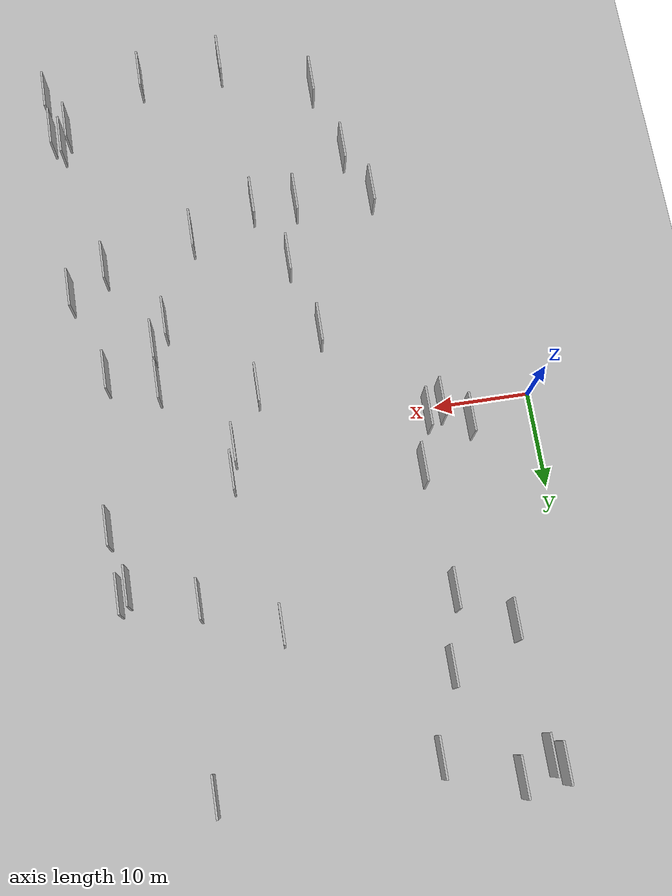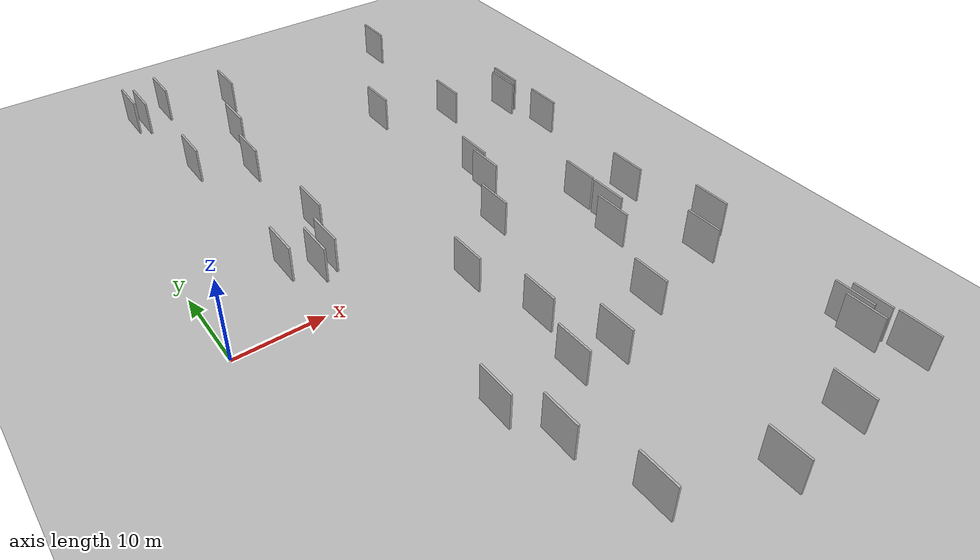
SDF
<?xml version="1.0" encoding="utf-8"?>

<sdf version="1.6">

   <world name="default">

      <gui fullscreen="0">

         <camera name="user_camera">

            <pose>-15 0 4.57585 0 0 0</pose>

            <view_controller>orbit</view_controller>

         </camera>

      </gui>

      <scene>

         <sky>

           <clouds>

             <speed>12</speed>

           </clouds>

         </sky>

         <ambient>0.4 0.4 0.4 1</ambient>

         <background>0.7 0.7 0.7 1</background>

         <shadows>1</shadows>

      </scene>

      <gravity>0 0 -9.8066</gravity>

      <magnetic_field>6e-06 2.3e-05 -4.2e-05</magnetic_field>

      <physics default="0" name="default_physics" type="ode">

         <ode>

            <solver>

               <type>quick</type>

               <iters>10</iters>

               <sor>1.0</sor>

               <use_dynamic_moi_rescaling>0</use_dynamic_moi_rescaling>

            </solver>

            <constraints>

               <cfm>0</cfm>

               <erp>0.2</erp>

               <contact_max_correcting_vel>100</contact_max_correcting_vel>

               <contact_surface_layer>0.001</contact_surface_layer>

            </constraints>

         </ode>

         <max_step_size>0.004</max_step_size>

         <real_time_factor>1</real_time_factor>

         <real_time_update_rate>250</real_time_update_rate>

      </physics>

      <light name="sun" type="directional">

         <cast_shadows>1</cast_shadows>

         <pose>0 0 10 0 0 0</pose>

         <diffuse>0.8 0.8 0.8 1</diffuse>

         <specular>0.2 0.2 0.2 1</specular>

         <attenuation>

            <range>1000</range>

            <constant>0.9</constant>

            <linear>0.01</linear>

            <quadratic>0.001</quadratic>

         </attenuation>

         <direction>-0.5 0.1 -0.9</direction>

      </light>

      <include>

         <name>ground_plane_1</name>

         <uri>model://HANNAS_ground_plane</uri>

         <pose>0 0 0  0 0 0</pose>

      </include>

      <include>

         <name>ground_plane_2</name>

         <uri>model://HANNAS_ground_plane</uri>

         <pose>100 0 0  0 0 0</pose>

      </include>

      <model name="HANNAS_wall_1">

         <static>1</static>

         <pose frame="">29.1804 20.7150 5.0 0.000000 0.000000 1.570796</pose>

         <link name="link">

            <pose frame="">0 0 2.00 0 0 0</pose>

            <collision name="collision">

               <geometry>

                  <box>

                     <size>4.00 0.2 4.00</size>

                  </box>

               </geometry>

               <max_contacts>10</max_contacts>

               <surface>

                  <contact>

                     <ode/>

                  </contact>

                  <bounce/>

                  <friction>

                     <torsional>

                        <ode/>

                     </torsional>

                     <ode/>

                  </friction>

               </surface>

            </collision>

            <visual name="visual">

               <cast_shadows>0</cast_shadows>

               <geometry>

                  <box>

                     <size>4.00 0.2 4.00</size>

                  </box>

               </geometry>

               <material>

                  <script>

                     <uri>model://HANNAS_wall/materials/scripts</uri>

                     <uri>model://HANNAS_wall/materials/textures</uri>

                     <name>vrc/HANNAS_wall</name>

                  </script>

               </material>

            </visual>

            <self_collide>0</self_collide>

            <enable_wind>0</enable_wind>

            <kinematic>0</kinematic>

         </link>

      </model>

      <model name="HANNAS_wall_2">

         <static>1</static>

         <pose frame="">44.1626 -34.4590 5.0 0.000000 0.000000 1.570796</pose>

         <link name="link">

            <pose frame="">0 0 2.00 0 0 0</pose>

            <collision name="collision">

               <geometry>

                  <box>

                     <size>4.00 0.2 4.00</size>

                  </box>

               </geometry>

               <max_contacts>10</max_contacts>

               <surface>

                  <contact>

                     <ode/>

                  </contact>

                  <bounce/>

                  <friction>

                     <torsional>

                        <ode/>

                     </torsional>

                     <ode/>

                  </friction>

               </surface>

            </collision>

            <visual name="visual">

               <cast_shadows>0</cast_shadows>

               <geometry>

                  <box>

                     <size>4.00 0.2 4.00</size>

                  </box>

               </geometry>

               <material>

                  <script>

                     <uri>model://HANNAS_wall/materials/scripts</uri>

                     <uri>model://HANNAS_wall/materials/textures</uri>

                     <name>vrc/HANNAS_wall</name>

                  </script>

               </material>

            </visual>

            <self_collide>0</self_collide>

            <enable_wind>0</enable_wind>

            <kinematic>0</kinematic>

         </link>

      </model>

      <model name="HANNAS_wall_3">

         <static>1</static>

         <pose frame="">12.3470 19.8052 5.0 0.000000 0.000000 1.570796</pose>

         <link name="link">

            <pose frame="">0 0 2.00 0 0 0</pose>

            <collision name="collision">

               <geometry>

                  <box>

                     <size>4.00 0.2 4.00</size>

                  </box>

               </geometry>

               <max_contacts>10</max_contacts>

               <surface>

                  <contact>

                     <ode/>

                  </contact>

                  <bounce/>

                  <friction>

                     <torsional>

                        <ode/>

                     </torsional>

                     <ode/>

                  </friction>

               </surface>

            </collision>

            <visual name="visual">

               <cast_shadows>0</cast_shadows>

               <geometry>

                  <box>

                     <size>4.00 0.2 4.00</size>

                  </box>

               </geometry>

               <material>

                  <script>

                     <uri>model://HANNAS_wall/materials/scripts</uri>

                     <uri>model://HANNAS_wall/materials/textures</uri>

                     <name>vrc/HANNAS_wall</name>

                  </script>

               </material>

            </visual>

            <self_collide>0</self_collide>

            <enable_wind>0</enable_wind>

            <kinematic>0</kinematic>

         </link>

      </model>

      <model name="HANNAS_wall_4">

         <static>1</static>

         <pose frame="">31.8530 5.3549 5.0 0.000000 0.000000 1.570796</pose>

         <link name="link">

            <pose frame="">0 0 2.00 0 0 0</pose>

            <collision name="collision">

               <geometry>

                  <box>

                     <size>4.00 0.2 4.00</size>

                  </box>

               </geometry>

               <max_contacts>10</max_contacts>

               <surface>

                  <contact>

                     <ode/>

                  </contact>

                  <bounce/>

                  <friction>

                     <torsional>

                        <ode/>

                     </torsional>

                     <ode/>

                  </friction>

               </surface>

            </collision>

            <visual name="visual">

               <cast_shadows>0</cast_shadows>

               <geometry>

                  <box>

                     <size>4.00 0.2 4.00</size>

                  </box>

               </geometry>

               <material>

                  <script>

                     <uri>model://HANNAS_wall/materials/scripts</uri>

                     <uri>model://HANNAS_wall/materials/textures</uri>

                     <name>vrc/HANNAS_wall</name>

                  </script>

               </material>

            </visual>

            <self_collide>0</self_collide>

            <enable_wind>0</enable_wind>

            <kinematic>0</kinematic>

         </link>

      </model>

      <model name="HANNAS_wall_5">

         <static>1</static>

         <pose frame="">9.3715 37.5616 5.0 0.000000 0.000000 1.570796</pose>

         <link name="link">

            <pose frame="">0 0 2.00 0 0 0</pose>

            <collision name="collision">

               <geometry>

                  <box>

                     <size>4.00 0.2 4.00</size>

                  </box>

               </geometry>

               <max_contacts>10</max_contacts>

               <surface>

                  <contact>

                     <ode/>

                  </contact>

                  <bounce/>

                  <friction>

                     <torsional>

                        <ode/>

                     </torsional>

                     <ode/>

                  </friction>

               </surface>

            </collision>

            <visual name="visual">

               <cast_shadows>0</cast_shadows>

               <geometry>

                  <box>

                     <size>4.00 0.2 4.00</size>

                  </box>

               </geometry>

               <material>

                  <script>

                     <uri>model://HANNAS_wall/materials/scripts</uri>

                     <uri>model://HANNAS_wall/materials/textures</uri>

                     <name>vrc/HANNAS_wall</name>

                  </script>

               </material>

            </visual>

            <self_collide>0</self_collide>

            <enable_wind>0</enable_wind>

            <kinematic>0</kinematic>

         </link>

      </model>

      <model name="HANNAS_wall_6">

         <static>1</static>

         <pose frame="">45.6679 -15.7264 5.0 0.000000 0.000000 1.570796</pose>

         <link name="link">

            <pose frame="">0 0 2.00 0 0 0</pose>

            <collision name="collision">

               <geometry>

                  <box>

                     <size>4.00 0.2 4.00</size>

                  </box>

               </geometry>

               <max_contacts>10</max_contacts>

               <surface>

                  <contact>

                     <ode/>

                  </contact>

                  <bounce/>

                  <friction>

                     <torsional>

                        <ode/>

                     </torsional>

                     <ode/>

                  </friction>

               </surface>

            </collision>

            <visual name="visual">

               <cast_shadows>0</cast_shadows>

               <geometry>

                  <box>

                     <size>4.00 0.2 4.00</size>

                  </box>

               </geometry>

               <material>

                  <script>

                     <uri>model://HANNAS_wall/materials/scripts</uri>

                     <uri>model://HANNAS_wall/materials/textures</uri>

                     <name>vrc/HANNAS_wall</name>

                  </script>

               </material>

            </visual>

            <self_collide>0</self_collide>

            <enable_wind>0</enable_wind>

            <kinematic>0</kinematic>

         </link>

      </model>

      <model name="HANNAS_wall_7">

         <static>1</static>

         <pose frame="">5.3124 36.9053 5.0 0.000000 0.000000 1.570796</pose>

         <link name="link">

            <pose frame="">0 0 2.00 0 0 0</pose>

            <collision name="collision">

               <geometry>

                  <box>

                     <size>4.00 0.2 4.00</size>

                  </box>

               </geometry>

               <max_contacts>10</max_contacts>

               <surface>

                  <contact>

                     <ode/>

                  </contact>

                  <bounce/>

                  <friction>

                     <torsional>

                        <ode/>

                     </torsional>

                     <ode/>

                  </friction>

               </surface>

            </collision>

            <visual name="visual">

               <cast_shadows>0</cast_shadows>

               <geometry>

                  <box>

                     <size>4.00 0.2 4.00</size>

                  </box>

               </geometry>

               <material>

                  <script>

                     <uri>model://HANNAS_wall/materials/scripts</uri>

                     <uri>model://HANNAS_wall/materials/textures</uri>

                     <name>vrc/HANNAS_wall</name>

                  </script>

               </material>

            </visual>

            <self_collide>0</self_collide>

            <enable_wind>0</enable_wind>

            <kinematic>0</kinematic>

         </link>

      </model>

      <model name="HANNAS_wall_8">

         <static>1</static>

         <pose frame="">21.4274 -22.7478 5.0 0.000000 0.000000 1.570796</pose>

         <link name="link">

            <pose frame="">0 0 2.00 0 0 0</pose>

            <collision name="collision">

               <geometry>

                  <box>

                     <size>4.00 0.2 4.00</size>

                  </box>

               </geometry>

               <max_contacts>10</max_contacts>

               <surface>

                  <contact>

                     <ode/>

                  </contact>

                  <bounce/>

                  <friction>

                     <torsional>

                        <ode/>

                     </torsional>

                     <ode/>

                  </friction>

               </surface>

            </collision>

            <visual name="visual">

               <cast_shadows>0</cast_shadows>

               <geometry>

                  <box>

                     <size>4.00 0.2 4.00</size>

                  </box>

               </geometry>

               <material>

                  <script>

                     <uri>model://HANNAS_wall/materials/scripts</uri>

                     <uri>model://HANNAS_wall/materials/textures</uri>

                     <name>vrc/HANNAS_wall</name>

                  </script>

               </material>

            </visual>

            <self_collide>0</self_collide>

            <enable_wind>0</enable_wind>

            <kinematic>0</kinematic>

         </link>

      </model>

      <model name="HANNAS_wall_9">

         <static>1</static>

         <pose frame="">16.4098 34.7605 5.0 0.000000 0.000000 1.570796</pose>

         <link name="link">

            <pose frame="">0 0 2.00 0 0 0</pose>

            <collision name="collision">

               <geometry>

                  <box>

                     <size>4.00 0.2 4.00</size>

                  </box>

               </geometry>

               <max_contacts>10</max_contacts>

               <surface>

                  <contact>

                     <ode/>

                  </contact>

                  <bounce/>

                  <friction>

                     <torsional>

                        <ode/>

                     </torsional>

                     <ode/>

                  </friction>

               </surface>

            </collision>

            <visual name="visual">

               <cast_shadows>0</cast_shadows>

               <geometry>

                  <box>

                     <size>4.00 0.2 4.00</size>

                  </box>

               </geometry>

               <material>

                  <script>

                     <uri>model://HANNAS_wall/materials/scripts</uri>

                     <uri>model://HANNAS_wall/materials/textures</uri>

                     <name>vrc/HANNAS_wall</name>

                  </script>

               </material>

            </visual>

            <self_collide>0</self_collide>

            <enable_wind>0</enable_wind>

            <kinematic>0</kinematic>

         </link>

      </model>

      <model name="HANNAS_wall_10">

         <static>1</static>

         <pose frame="">44.8331 -32.8432 5.0 0.000000 0.000000 1.570796</pose>

         <link name="link">

            <pose frame="">0 0 2.00 0 0 0</pose>

            <collision name="collision">

               <geometry>

                  <box>

                     <size>4.00 0.2 4.00</size>

                  </box>

               </geometry>

               <max_contacts>10</max_contacts>

               <surface>

                  <contact>

                     <ode/>

                  </contact>

                  <bounce/>

                  <friction>

                     <torsional>

                        <ode/>

                     </torsional>

                     <ode/>

                  </friction>

               </surface>

            </collision>

            <visual name="visual">

               <cast_shadows>0</cast_shadows>

               <geometry>

                  <box>

                     <size>4.00 0.2 4.00</size>

                  </box>

               </geometry>

               <material>

                  <script>

                     <uri>model://HANNAS_wall/materials/scripts</uri>

                     <uri>model://HANNAS_wall/materials/textures</uri>

                     <name>vrc/HANNAS_wall</name>

                  </script>

               </material>

            </visual>

            <self_collide>0</self_collide>

            <enable_wind>0</enable_wind>

            <kinematic>0</kinematic>

         </link>

      </model>

      <model name="HANNAS_wall_11">

         <static>1</static>

         <pose frame="">44.5225 8.9999 5.0 0.000000 0.000000 1.570796</pose>

         <link name="link">

            <pose frame="">0 0 2.00 0 0 0</pose>

            <collision name="collision">

               <geometry>

                  <box>

                     <size>4.00 0.2 4.00</size>

                  </box>

               </geometry>

               <max_contacts>10</max_contacts>

               <surface>

                  <contact>

                     <ode/>

                  </contact>

                  <bounce/>

                  <friction>

                     <torsional>

                        <ode/>

                     </torsional>

                     <ode/>

                  </friction>

               </surface>

            </collision>

            <visual name="visual">

               <cast_shadows>0</cast_shadows>

               <geometry>

                  <box>

                     <size>4.00 0.2 4.00</size>

                  </box>

               </geometry>

               <material>

                  <script>

                     <uri>model://HANNAS_wall/materials/scripts</uri>

                     <uri>model://HANNAS_wall/materials/textures</uri>

                     <name>vrc/HANNAS_wall</name>

                  </script>

               </material>

            </visual>

            <self_collide>0</self_collide>

            <enable_wind>0</enable_wind>

            <kinematic>0</kinematic>

         </link>

      </model>

      <model name="HANNAS_wall_12">

         <static>1</static>

         <pose frame="">37.4543 35.0978 5.0 0.000000 0.000000 1.570796</pose>

         <link name="link">

            <pose frame="">0 0 2.00 0 0 0</pose>

            <collision name="collision">

               <geometry>

                  <box>

                     <size>4.00 0.2 4.00</size>

                  </box>

               </geometry>

               <max_contacts>10</max_contacts>

               <surface>

                  <contact>

                     <ode/>

                  </contact>

                  <bounce/>

                  <friction>

                     <torsional>

                        <ode/>

                     </torsional>

                     <ode/>

                  </friction>

               </surface>

            </collision>

            <visual name="visual">

               <cast_shadows>0</cast_shadows>

               <geometry>

                  <box>

                     <size>4.00 0.2 4.00</size>

                  </box>

               </geometry>

               <material>

                  <script>

                     <uri>model://HANNAS_wall/materials/scripts</uri>

                     <uri>model://HANNAS_wall/materials/textures</uri>

                     <name>vrc/HANNAS_wall</name>

                  </script>

               </material>

            </visual>

            <self_collide>0</self_collide>

            <enable_wind>0</enable_wind>

            <kinematic>0</kinematic>

         </link>

      </model>

      <model name="HANNAS_wall_13">

         <static>1</static>

         <pose frame="">6.3578 36.0216 5.0 0.000000 0.000000 1.570796</pose>

         <link name="link">

            <pose frame="">0 0 2.00 0 0 0</pose>

            <collision name="collision">

               <geometry>

                  <box>

                     <size>4.00 0.2 4.00</size>

                  </box>

               </geometry>

               <max_contacts>10</max_contacts>

               <surface>

                  <contact>

                     <ode/>

                  </contact>

                  <bounce/>

                  <friction>

                     <torsional>

                        <ode/>

                     </torsional>

                     <ode/>

                  </friction>

               </surface>

            </collision>

            <visual name="visual">

               <cast_shadows>0</cast_shadows>

               <geometry>

                  <box>

                     <size>4.00 0.2 4.00</size>

                  </box>

               </geometry>

               <material>

                  <script>

                     <uri>model://HANNAS_wall/materials/scripts</uri>

                     <uri>model://HANNAS_wall/materials/textures</uri>

                     <name>vrc/HANNAS_wall</name>

                  </script>

               </material>

            </visual>

            <self_collide>0</self_collide>

            <enable_wind>0</enable_wind>

            <kinematic>0</kinematic>

         </link>

      </model>

      <model name="HANNAS_wall_14">

         <static>1</static>

         <pose frame="">13.4109 -22.6222 5.0 0.000000 0.000000 1.570796</pose>

         <link name="link">

            <pose frame="">0 0 2.00 0 0 0</pose>

            <collision name="collision">

               <geometry>

                  <box>

                     <size>4.00 0.2 4.00</size>

                  </box>

               </geometry>

               <max_contacts>10</max_contacts>

               <surface>

                  <contact>

                     <ode/>

                  </contact>

                  <bounce/>

                  <friction>

                     <torsional>

                        <ode/>

                     </torsional>

                     <ode/>

                  </friction>

               </surface>

            </collision>

            <visual name="visual">

               <cast_shadows>0</cast_shadows>

               <geometry>

                  <box>

                     <size>4.00 0.2 4.00</size>

                  </box>

               </geometry>

               <material>

                  <script>

                     <uri>model://HANNAS_wall/materials/scripts</uri>

                     <uri>model://HANNAS_wall/materials/textures</uri>

                     <name>vrc/HANNAS_wall</name>

                  </script>

               </material>

            </visual>

            <self_collide>0</self_collide>

            <enable_wind>0</enable_wind>

            <kinematic>0</kinematic>

         </link>

      </model>

      <model name="HANNAS_wall_15">

         <static>1</static>

         <pose frame="">7.7082 3.1260 5.0 0.000000 0.000000 1.570796</pose>

         <link name="link">

            <pose frame="">0 0 2.00 0 0 0</pose>

            <collision name="collision">

               <geometry>

                  <box>

                     <size>4.00 0.2 4.00</size>

                  </box>

               </geometry>

               <max_contacts>10</max_contacts>

               <surface>

                  <contact>

                     <ode/>

                  </contact>

                  <bounce/>

                  <friction>

                     <torsional>

                        <ode/>

                     </torsional>

                     <ode/>

                  </friction>

               </surface>

            </collision>

            <visual name="visual">

               <cast_shadows>0</cast_shadows>

               <geometry>

                  <box>

                     <size>4.00 0.2 4.00</size>

                  </box>

               </geometry>

               <material>

                  <script>

                     <uri>model://HANNAS_wall/materials/scripts</uri>

                     <uri>model://HANNAS_wall/materials/textures</uri>

                     <name>vrc/HANNAS_wall</name>

                  </script>

               </material>

            </visual>

            <self_collide>0</self_collide>

            <enable_wind>0</enable_wind>

            <kinematic>0</kinematic>

         </link>

      </model>

      <model name="HANNAS_wall_16">

         <static>1</static>

         <pose frame="">13.9004 26.8375 5.0 0.000000 0.000000 1.570796</pose>

         <link name="link">

            <pose frame="">0 0 2.00 0 0 0</pose>

            <collision name="collision">

               <geometry>

                  <box>

                     <size>4.00 0.2 4.00</size>

                  </box>

               </geometry>

               <max_contacts>10</max_contacts>

               <surface>

                  <contact>

                     <ode/>

                  </contact>

                  <bounce/>

                  <friction>

                     <torsional>

                        <ode/>

                     </torsional>

                     <ode/>

                  </friction>

               </surface>

            </collision>

            <visual name="visual">

               <cast_shadows>0</cast_shadows>

               <geometry>

                  <box>

                     <size>4.00 0.2 4.00</size>

                  </box>

               </geometry>

               <material>

                  <script>

                     <uri>model://HANNAS_wall/materials/scripts</uri>

                     <uri>model://HANNAS_wall/materials/textures</uri>

                     <name>vrc/HANNAS_wall</name>

                  </script>

               </material>

            </visual>

            <self_collide>0</self_collide>

            <enable_wind>0</enable_wind>

            <kinematic>0</kinematic>

         </link>

      </model>

      <model name="HANNAS_wall_17">

         <static>1</static>

         <pose frame="">7.2357 23.4575 5.0 0.000000 0.000000 1.570796</pose>

         <link name="link">

            <pose frame="">0 0 2.00 0 0 0</pose>

            <collision name="collision">

               <geometry>

                  <box>

                     <size>4.00 0.2 4.00</size>

                  </box>

               </geometry>

               <max_contacts>10</max_contacts>

               <surface>

                  <contact>

                     <ode/>

                  </contact>

                  <bounce/>

                  <friction>

                     <torsional>

                        <ode/>

                     </torsional>

                     <ode/>

                  </friction>

               </surface>

            </collision>

            <visual name="visual">

               <cast_shadows>0</cast_shadows>

               <geometry>

                  <box>

                     <size>4.00 0.2 4.00</size>

                  </box>

               </geometry>

               <material>

                  <script>

                     <uri>model://HANNAS_wall/materials/scripts</uri>

                     <uri>model://HANNAS_wall/materials/textures</uri>

                     <name>vrc/HANNAS_wall</name>

                  </script>

               </material>

            </visual>

            <self_collide>0</self_collide>

            <enable_wind>0</enable_wind>

            <kinematic>0</kinematic>

         </link>

      </model>

      <model name="HANNAS_wall_18">

         <static>1</static>

         <pose frame="">27.1371 -39.9501 5.0 0.000000 0.000000 1.570796</pose>

         <link name="link">

            <pose frame="">0 0 2.00 0 0 0</pose>

            <collision name="collision">

               <geometry>

                  <box>

                     <size>4.00 0.2 4.00</size>

                  </box>

               </geometry>

               <max_contacts>10</max_contacts>

               <surface>

                  <contact>

                     <ode/>

                  </contact>

                  <bounce/>

                  <friction>

                     <torsional>

                        <ode/>

                     </torsional>

                     <ode/>

                  </friction>

               </surface>

            </collision>

            <visual name="visual">

               <cast_shadows>0</cast_shadows>

               <geometry>

                  <box>

                     <size>4.00 0.2 4.00</size>

                  </box>

               </geometry>

               <material>

                  <script>

                     <uri>model://HANNAS_wall/materials/scripts</uri>

                     <uri>model://HANNAS_wall/materials/textures</uri>

                     <name>vrc/HANNAS_wall</name>

                  </script>

               </material>

            </visual>

            <self_collide>0</self_collide>

            <enable_wind>0</enable_wind>

            <kinematic>0</kinematic>

         </link>

      </model>

      <model name="HANNAS_wall_19">

         <static>1</static>

         <pose frame="">25.9257 -23.0241 5.0 0.000000 0.000000 1.570796</pose>

         <link name="link">

            <pose frame="">0 0 2.00 0 0 0</pose>

            <collision name="collision">

               <geometry>

                  <box>

                     <size>4.00 0.2 4.00</size>

                  </box>

               </geometry>

               <max_contacts>10</max_contacts>

               <surface>

                  <contact>

                     <ode/>

                  </contact>

                  <bounce/>

                  <friction>

                     <torsional>

                        <ode/>

                     </torsional>

                     <ode/>

                  </friction>

               </surface>

            </collision>

            <visual name="visual">

               <cast_shadows>0</cast_shadows>

               <geometry>

                  <box>

                     <size>4.00 0.2 4.00</size>

                  </box>

               </geometry>

               <material>

                  <script>

                     <uri>model://HANNAS_wall/materials/scripts</uri>

                     <uri>model://HANNAS_wall/materials/textures</uri>

                     <name>vrc/HANNAS_wall</name>

                  </script>

               </material>

            </visual>

            <self_collide>0</self_collide>

            <enable_wind>0</enable_wind>

            <kinematic>0</kinematic>

         </link>

      </model>

      <model name="HANNAS_wall_20">

         <static>1</static>

         <pose frame="">28.2230 -3.0331 5.0 0.000000 0.000000 1.570796</pose>

         <link name="link">

            <pose frame="">0 0 2.00 0 0 0</pose>

            <collision name="collision">

               <geometry>

                  <box>

                     <size>4.00 0.2 4.00</size>

                  </box>

               </geometry>

               <max_contacts>10</max_contacts>

               <surface>

                  <contact>

                     <ode/>

                  </contact>

                  <bounce/>

                  <friction>

                     <torsional>

                        <ode/>

                     </torsional>

                     <ode/>

                  </friction>

               </surface>

            </collision>

            <visual name="visual">

               <cast_shadows>0</cast_shadows>

               <geometry>

                  <box>

                     <size>4.00 0.2 4.00</size>

                  </box>

               </geometry>

               <material>

                  <script>

                     <uri>model://HANNAS_wall/materials/scripts</uri>

                     <uri>model://HANNAS_wall/materials/textures</uri>

                     <name>vrc/HANNAS_wall</name>

                  </script>

               </material>

            </visual>

            <self_collide>0</self_collide>

            <enable_wind>0</enable_wind>

            <kinematic>0</kinematic>

         </link>

      </model>

      <model name="HANNAS_wall_21">

         <static>1</static>

         <pose frame="">32.6101 -20.3721 5.0 0.000000 0.000000 1.570796</pose>

         <link name="link">

            <pose frame="">0 0 2.00 0 0 0</pose>

            <collision name="collision">

               <geometry>

                  <box>

                     <size>4.00 0.2 4.00</size>

                  </box>

               </geometry>

               <max_contacts>10</max_contacts>

               <surface>

                  <contact>

                     <ode/>

                  </contact>

                  <bounce/>

                  <friction>

                     <torsional>

                        <ode/>

                     </torsional>

                     <ode/>

                  </friction>

               </surface>

            </collision>

            <visual name="visual">

               <cast_shadows>0</cast_shadows>

               <geometry>

                  <box>

                     <size>4.00 0.2 4.00</size>

                  </box>

               </geometry>

               <material>

                  <script>

                     <uri>model://HANNAS_wall/materials/scripts</uri>

                     <uri>model://HANNAS_wall/materials/textures</uri>

                     <name>vrc/HANNAS_wall</name>

                  </script>

               </material>

            </visual>

            <self_collide>0</self_collide>

            <enable_wind>0</enable_wind>

            <kinematic>0</kinematic>

         </link>

      </model>

      <model name="HANNAS_wall_22">

         <static>1</static>

         <pose frame="">43.3098 14.9686 5.0 0.000000 0.000000 1.570796</pose>

         <link name="link">

            <pose frame="">0 0 2.00 0 0 0</pose>

            <collision name="collision">

               <geometry>

                  <box>

                     <size>4.00 0.2 4.00</size>

                  </box>

               </geometry>

               <max_contacts>10</max_contacts>

               <surface>

                  <contact>

                     <ode/>

                  </contact>

                  <bounce/>

                  <friction>

                     <torsional>

                        <ode/>

                     </torsional>

                     <ode/>

                  </friction>

               </surface>

            </collision>

            <visual name="visual">

               <cast_shadows>0</cast_shadows>

               <geometry>

                  <box>

                     <size>4.00 0.2 4.00</size>

                  </box>

               </geometry>

               <material>

                  <script>

                     <uri>model://HANNAS_wall/materials/scripts</uri>

                     <uri>model://HANNAS_wall/materials/textures</uri>

                     <name>vrc/HANNAS_wall</name>

                  </script>

               </material>

            </visual>

            <self_collide>0</self_collide>

            <enable_wind>0</enable_wind>

            <kinematic>0</kinematic>

         </link>

      </model>

      <model name="HANNAS_wall_23">

         <static>1</static>

         <pose frame="">43.0128 -6.5655 5.0 0.000000 0.000000 1.570796</pose>

         <link name="link">

            <pose frame="">0 0 2.00 0 0 0</pose>

            <collision name="collision">

               <geometry>

                  <box>

                     <size>4.00 0.2 4.00</size>

                  </box>

               </geometry>

               <max_contacts>10</max_contacts>

               <surface>

                  <contact>

                     <ode/>

                  </contact>

                  <bounce/>

                  <friction>

                     <torsional>

                        <ode/>

                     </torsional>

                     <ode/>

                  </friction>

               </surface>

            </collision>

            <visual name="visual">

               <cast_shadows>0</cast_shadows>

               <geometry>

                  <box>

                     <size>4.00 0.2 4.00</size>

                  </box>

               </geometry>

               <material>

                  <script>

                     <uri>model://HANNAS_wall/materials/scripts</uri>

                     <uri>model://HANNAS_wall/materials/textures</uri>

                     <name>vrc/HANNAS_wall</name>

                  </script>

               </material>

            </visual>

            <self_collide>0</self_collide>

            <enable_wind>0</enable_wind>

            <kinematic>0</kinematic>

         </link>

      </model>

      <model name="HANNAS_wall_24">

         <static>1</static>

         <pose frame="">37.9990 -4.7960 5.0 0.000000 0.000000 1.570796</pose>

         <link name="link">

            <pose frame="">0 0 2.00 0 0 0</pose>

            <collision name="collision">

               <geometry>

                  <box>

                     <size>4.00 0.2 4.00</size>

                  </box>

               </geometry>

               <max_contacts>10</max_contacts>

               <surface>

                  <contact>

                     <ode/>

                  </contact>

                  <bounce/>

                  <friction>

                     <torsional>

                        <ode/>

                     </torsional>

                     <ode/>

                  </friction>

               </surface>

            </collision>

            <visual name="visual">

               <cast_shadows>0</cast_shadows>

               <geometry>

                  <box>

                     <size>4.00 0.2 4.00</size>

                  </box>

               </geometry>

               <material>

                  <script>

                     <uri>model://HANNAS_wall/materials/scripts</uri>

                     <uri>model://HANNAS_wall/materials/textures</uri>

                     <name>vrc/HANNAS_wall</name>

                  </script>

               </material>

            </visual>

            <self_collide>0</self_collide>

            <enable_wind>0</enable_wind>

            <kinematic>0</kinematic>

         </link>

      </model>

      <model name="HANNAS_wall_25">

         <static>1</static>

         <pose frame="">35.7864 -39.2988 5.0 0.000000 0.000000 1.570796</pose>

         <link name="link">

            <pose frame="">0 0 2.00 0 0 0</pose>

            <collision name="collision">

               <geometry>

                  <box>

                     <size>4.00 0.2 4.00</size>

                  </box>

               </geometry>

               <max_contacts>10</max_contacts>

               <surface>

                  <contact>

                     <ode/>

                  </contact>

                  <bounce/>

                  <friction>

                     <torsional>

                        <ode/>

                     </torsional>

                     <ode/>

                  </friction>

               </surface>

            </collision>

            <visual name="visual">

               <cast_shadows>0</cast_shadows>

               <geometry>

                  <box>

                     <size>4.00 0.2 4.00</size>

                  </box>

               </geometry>

               <material>

                  <script>

                     <uri>model://HANNAS_wall/materials/scripts</uri>

                     <uri>model://HANNAS_wall/materials/textures</uri>

                     <name>vrc/HANNAS_wall</name>

                  </script>

               </material>

            </visual>

            <self_collide>0</self_collide>

            <enable_wind>0</enable_wind>

            <kinematic>0</kinematic>

         </link>

      </model>

      <model name="HANNAS_wall_26">

         <static>1</static>

         <pose frame="">45.7862 -33.9953 5.0 0.000000 0.000000 1.570796</pose>

         <link name="link">

            <pose frame="">0 0 2.00 0 0 0</pose>

            <collision name="collision">

               <geometry>

                  <box>

                     <size>4.00 0.2 4.00</size>

                  </box>

               </geometry>

               <max_contacts>10</max_contacts>

               <surface>

                  <contact>

                     <ode/>

                  </contact>

                  <bounce/>

                  <friction>

                     <torsional>

                        <ode/>

                     </torsional>

                     <ode/>

                  </friction>

               </surface>

            </collision>

            <visual name="visual">

               <cast_shadows>0</cast_shadows>

               <geometry>

                  <box>

                     <size>4.00 0.2 4.00</size>

                  </box>

               </geometry>

               <material>

                  <script>

                     <uri>model://HANNAS_wall/materials/scripts</uri>

                     <uri>model://HANNAS_wall/materials/textures</uri>

                     <name>vrc/HANNAS_wall</name>

                  </script>

               </material>

            </visual>

            <self_collide>0</self_collide>

            <enable_wind>0</enable_wind>

            <kinematic>0</kinematic>

         </link>

      </model>

      <model name="HANNAS_wall_27">

         <static>1</static>

         <pose frame="">10.2931 1.1357 5.0 0.000000 0.000000 1.570796</pose>

         <link name="link">

            <pose frame="">0 0 2.00 0 0 0</pose>

            <collision name="collision">

               <geometry>

                  <box>

                     <size>4.00 0.2 4.00</size>

                  </box>

               </geometry>

               <max_contacts>10</max_contacts>

               <surface>

                  <contact>

                     <ode/>

                  </contact>

                  <bounce/>

                  <friction>

                     <torsional>

                        <ode/>

                     </torsional>

                     <ode/>

                  </friction>

               </surface>

            </collision>

            <visual name="visual">

               <cast_shadows>0</cast_shadows>

               <geometry>

                  <box>

                     <size>4.00 0.2 4.00</size>

                  </box>

               </geometry>

               <material>

                  <script>

                     <uri>model://HANNAS_wall/materials/scripts</uri>

                     <uri>model://HANNAS_wall/materials/textures</uri>

                     <name>vrc/HANNAS_wall</name>

                  </script>

               </material>

            </visual>

            <self_collide>0</self_collide>

            <enable_wind>0</enable_wind>

            <kinematic>0</kinematic>

         </link>

      </model>

      <model name="HANNAS_wall_28">

         <static>1</static>

         <pose frame="">36.4997 -11.2973 5.0 0.000000 0.000000 1.570796</pose>

         <link name="link">

            <pose frame="">0 0 2.00 0 0 0</pose>

            <collision name="collision">

               <geometry>

                  <box>

                     <size>4.00 0.2 4.00</size>

                  </box>

               </geometry>

               <max_contacts>10</max_contacts>

               <surface>

                  <contact>

                     <ode/>

                  </contact>

                  <bounce/>

                  <friction>

                     <torsional>

                        <ode/>

                     </torsional>

                     <ode/>

                  </friction>

               </surface>

            </collision>

            <visual name="visual">

               <cast_shadows>0</cast_shadows>

               <geometry>

                  <box>

                     <size>4.00 0.2 4.00</size>

                  </box>

               </geometry>

               <material>

                  <script>

                     <uri>model://HANNAS_wall/materials/scripts</uri>

                     <uri>model://HANNAS_wall/materials/textures</uri>

                     <name>vrc/HANNAS_wall</name>

                  </script>

               </material>

            </visual>

            <self_collide>0</self_collide>

            <enable_wind>0</enable_wind>

            <kinematic>0</kinematic>

         </link>

      </model>

      <model name="HANNAS_wall_29">

         <static>1</static>

         <pose frame="">15.6143 -27.8350 5.0 0.000000 0.000000 1.570796</pose>

         <link name="link">

            <pose frame="">0 0 2.00 0 0 0</pose>

            <collision name="collision">

               <geometry>

                  <box>

                     <size>4.00 0.2 4.00</size>

                  </box>

               </geometry>

               <max_contacts>10</max_contacts>

               <surface>

                  <contact>

                     <ode/>

                  </contact>

                  <bounce/>

                  <friction>

                     <torsional>

                        <ode/>

                     </torsional>

                     <ode/>

                  </friction>

               </surface>

            </collision>

            <visual name="visual">

               <cast_shadows>0</cast_shadows>

               <geometry>

                  <box>

                     <size>4.00 0.2 4.00</size>

                  </box>

               </geometry>

               <material>

                  <script>

                     <uri>model://HANNAS_wall/materials/scripts</uri>

                     <uri>model://HANNAS_wall/materials/textures</uri>

                     <name>vrc/HANNAS_wall</name>

                  </script>

               </material>

            </visual>

            <self_collide>0</self_collide>

            <enable_wind>0</enable_wind>

            <kinematic>0</kinematic>

         </link>

      </model>

      <model name="HANNAS_wall_30">

         <static>1</static>

         <pose frame="">41.9268 -18.1756 5.0 0.000000 0.000000 1.570796</pose>

         <link name="link">

            <pose frame="">0 0 2.00 0 0 0</pose>

            <collision name="collision">

               <geometry>

                  <box>

                     <size>4.00 0.2 4.00</size>

                  </box>

               </geometry>

               <max_contacts>10</max_contacts>

               <surface>

                  <contact>

                     <ode/>

                  </contact>

                  <bounce/>

                  <friction>

                     <torsional>

                        <ode/>

                     </torsional>

                     <ode/>

                  </friction>

               </surface>

            </collision>

            <visual name="visual">

               <cast_shadows>0</cast_shadows>

               <geometry>

                  <box>

                     <size>4.00 0.2 4.00</size>

                  </box>

               </geometry>

               <material>

                  <script>

                     <uri>model://HANNAS_wall/materials/scripts</uri>

                     <uri>model://HANNAS_wall/materials/textures</uri>

                     <name>vrc/HANNAS_wall</name>

                  </script>

               </material>

            </visual>

            <self_collide>0</self_collide>

            <enable_wind>0</enable_wind>

            <kinematic>0</kinematic>

         </link>

      </model>

      <model name="HANNAS_wall_31">

         <static>1</static>

         <pose frame="">17.7011 -36.0080 5.0 0.000000 0.000000 1.570796</pose>

         <link name="link">

            <pose frame="">0 0 2.00 0 0 0</pose>

            <collision name="collision">

               <geometry>

                  <box>

                     <size>4.00 0.2 4.00</size>

                  </box>

               </geometry>

               <max_contacts>10</max_contacts>

               <surface>

                  <contact>

                     <ode/>

                  </contact>

                  <bounce/>

                  <friction>

                     <torsional>

                        <ode/>

                     </torsional>

                     <ode/>

                  </friction>

               </surface>

            </collision>

            <visual name="visual">

               <cast_shadows>0</cast_shadows>

               <geometry>

                  <box>

                     <size>4.00 0.2 4.00</size>

                  </box>

               </geometry>

               <material>

                  <script>

                     <uri>model://HANNAS_wall/materials/scripts</uri>

                     <uri>model://HANNAS_wall/materials/textures</uri>

                     <name>vrc/HANNAS_wall</name>

                  </script>

               </material>

            </visual>

            <self_collide>0</self_collide>

            <enable_wind>0</enable_wind>

            <kinematic>0</kinematic>

         </link>

      </model>

      <model name="HANNAS_wall_32">

         <static>1</static>

         <pose frame="">11.7989 1.8948 5.0 0.000000 0.000000 1.570796</pose>

         <link name="link">

            <pose frame="">0 0 2.00 0 0 0</pose>

            <collision name="collision">

               <geometry>

                  <box>

                     <size>4.00 0.2 4.00</size>

                  </box>

               </geometry>

               <max_contacts>10</max_contacts>

               <surface>

                  <contact>

                     <ode/>

                  </contact>

                  <bounce/>

                  <friction>

                     <torsional>

                        <ode/>

                     </torsional>

                     <ode/>

                  </friction>

               </surface>

            </collision>

            <visual name="visual">

               <cast_shadows>0</cast_shadows>

               <geometry>

                  <box>

                     <size>4.00 0.2 4.00</size>

                  </box>

               </geometry>

               <material>

                  <script>

                     <uri>model://HANNAS_wall/materials/scripts</uri>

                     <uri>model://HANNAS_wall/materials/textures</uri>

                     <name>vrc/HANNAS_wall</name>

                  </script>

               </material>

            </visual>

            <self_collide>0</self_collide>

            <enable_wind>0</enable_wind>

            <kinematic>0</kinematic>

         </link>

      </model>

      <model name="HANNAS_wall_33">

         <static>1</static>

         <pose frame="">13.2035 7.3622 5.0 0.000000 0.000000 1.570796</pose>

         <link name="link">

            <pose frame="">0 0 2.00 0 0 0</pose>

            <collision name="collision">

               <geometry>

                  <box>

                     <size>4.00 0.2 4.00</size>

                  </box>

               </geometry>

               <max_contacts>10</max_contacts>

               <surface>

                  <contact>

                     <ode/>

                  </contact>

                  <bounce/>

                  <friction>

                     <torsional>

                        <ode/>

                     </torsional>

                     <ode/>

                  </friction>

               </surface>

            </collision>

            <visual name="visual">

               <cast_shadows>0</cast_shadows>

               <geometry>

                  <box>

                     <size>4.00 0.2 4.00</size>

                  </box>

               </geometry>

               <material>

                  <script>

                     <uri>model://HANNAS_wall/materials/scripts</uri>

                     <uri>model://HANNAS_wall/materials/textures</uri>

                     <name>vrc/HANNAS_wall</name>

                  </script>

               </material>

            </visual>

            <self_collide>0</self_collide>

            <enable_wind>0</enable_wind>

            <kinematic>0</kinematic>

         </link>

      </model>

      <model name="HANNAS_wall_34">

         <static>1</static>

         <pose frame="">37.9595 -9.0857 5.0 0.000000 0.000000 1.570796</pose>

         <link name="link">

            <pose frame="">0 0 2.00 0 0 0</pose>

            <collision name="collision">

               <geometry>

                  <box>

                     <size>4.00 0.2 4.00</size>

                  </box>

               </geometry>

               <max_contacts>10</max_contacts>

               <surface>

                  <contact>

                     <ode/>

                  </contact>

                  <bounce/>

                  <friction>

                     <torsional>

                        <ode/>

                     </torsional>

                     <ode/>

                  </friction>

               </surface>

            </collision>

            <visual name="visual">

               <cast_shadows>0</cast_shadows>

               <geometry>

                  <box>

                     <size>4.00 0.2 4.00</size>

                  </box>

               </geometry>

               <material>

                  <script>

                     <uri>model://HANNAS_wall/materials/scripts</uri>

                     <uri>model://HANNAS_wall/materials/textures</uri>

                     <name>vrc/HANNAS_wall</name>

                  </script>

               </material>

            </visual>

            <self_collide>0</self_collide>

            <enable_wind>0</enable_wind>

            <kinematic>0</kinematic>

         </link>

      </model>

      <model name="HANNAS_wall_35">

         <static>1</static>

         <pose frame="">36.6637 17.2004 5.0 0.000000 0.000000 1.570796</pose>

         <link name="link">

            <pose frame="">0 0 2.00 0 0 0</pose>

            <collision name="collision">

               <geometry>

                  <box>

                     <size>4.00 0.2 4.00</size>

                  </box>

               </geometry>

               <max_contacts>10</max_contacts>

               <surface>

                  <contact>

                     <ode/>

                  </contact>

                  <bounce/>

                  <friction>

                     <torsional>

                        <ode/>

                     </torsional>

                     <ode/>

                  </friction>

               </surface>

            </collision>

            <visual name="visual">

               <cast_shadows>0</cast_shadows>

               <geometry>

                  <box>

                     <size>4.00 0.2 4.00</size>

                  </box>

               </geometry>

               <material>

                  <script>

                     <uri>model://HANNAS_wall/materials/scripts</uri>

                     <uri>model://HANNAS_wall/materials/textures</uri>

                     <name>vrc/HANNAS_wall</name>

                  </script>

               </material>

            </visual>

            <self_collide>0</self_collide>

            <enable_wind>0</enable_wind>

            <kinematic>0</kinematic>

         </link>

      </model>

      <model name="HANNAS_wall_36">

         <static>1</static>

         <pose frame="">45.9890 -38.3761 5.0 0.000000 0.000000 1.570796</pose>

         <link name="link">

            <pose frame="">0 0 2.00 0 0 0</pose>

            <collision name="collision">

               <geometry>

                  <box>

                     <size>4.00 0.2 4.00</size>

                  </box>

               </geometry>

               <max_contacts>10</max_contacts>

               <surface>

                  <contact>

                     <ode/>

                  </contact>

                  <bounce/>

                  <friction>

                     <torsional>

                        <ode/>

                     </torsional>

                     <ode/>

                  </friction>

               </surface>

            </collision>

            <visual name="visual">

               <cast_shadows>0</cast_shadows>

               <geometry>

                  <box>

                     <size>4.00 0.2 4.00</size>

                  </box>

               </geometry>

               <material>

                  <script>

                     <uri>model://HANNAS_wall/materials/scripts</uri>

                     <uri>model://HANNAS_wall/materials/textures</uri>

                     <name>vrc/HANNAS_wall</name>

                  </script>

               </material>

            </visual>

            <self_collide>0</self_collide>

            <enable_wind>0</enable_wind>

            <kinematic>0</kinematic>

         </link>

      </model>

      <model name="HANNAS_wall_37">

         <static>1</static>

         <pose frame="">31.3441 2.6331 5.0 0.000000 0.000000 1.570796</pose>

         <link name="link">

            <pose frame="">0 0 2.00 0 0 0</pose>

            <collision name="collision">

               <geometry>

                  <box>

                     <size>4.00 0.2 4.00</size>

                  </box>

               </geometry>

               <max_contacts>10</max_contacts>

               <surface>

                  <contact>

                     <ode/>

                  </contact>

                  <bounce/>

                  <friction>

                     <torsional>

                        <ode/>

                     </torsional>

                     <ode/>

                  </friction>

               </surface>

            </collision>

            <visual name="visual">

               <cast_shadows>0</cast_shadows>

               <geometry>

                  <box>

                     <size>4.00 0.2 4.00</size>

                  </box>

               </geometry>

               <material>

                  <script>

                     <uri>model://HANNAS_wall/materials/scripts</uri>

                     <uri>model://HANNAS_wall/materials/textures</uri>

                     <name>vrc/HANNAS_wall</name>

                  </script>

               </material>

            </visual>

            <self_collide>0</self_collide>

            <enable_wind>0</enable_wind>

            <kinematic>0</kinematic>

         </link>

      </model>

      <model name="HANNAS_wall_38">

         <static>1</static>

         <pose frame="">44.1605 15.6272 5.0 0.000000 0.000000 1.570796</pose>

         <link name="link">

            <pose frame="">0 0 2.00 0 0 0</pose>

            <collision name="collision">

               <geometry>

                  <box>

                     <size>4.00 0.2 4.00</size>

                  </box>

               </geometry>

               <max_contacts>10</max_contacts>

               <surface>

                  <contact>

                     <ode/>

                  </contact>

                  <bounce/>

                  <friction>

                     <torsional>

                        <ode/>

                     </torsional>

                     <ode/>

                  </friction>

               </surface>

            </collision>

            <visual name="visual">

               <cast_shadows>0</cast_shadows>

               <geometry>

                  <box>

                     <size>4.00 0.2 4.00</size>

                  </box>

               </geometry>

               <material>

                  <script>

                     <uri>model://HANNAS_wall/materials/scripts</uri>

                     <uri>model://HANNAS_wall/materials/textures</uri>

                     <name>vrc/HANNAS_wall</name>

                  </script>

               </material>

            </visual>

            <self_collide>0</self_collide>

            <enable_wind>0</enable_wind>

            <kinematic>0</kinematic>

         </link>

      </model>

      <model name="HANNAS_wall_39">

         <static>1</static>

         <pose frame="">23.1030 -16.2722 5.0 0.000000 0.000000 1.570796</pose>

         <link name="link">

            <pose frame="">0 0 2.00 0 0 0</pose>

            <collision name="collision">

               <geometry>

                  <box>

                     <size>4.00 0.2 4.00</size>

                  </box>

               </geometry>

               <max_contacts>10</max_contacts>

               <surface>

                  <contact>

                     <ode/>

                  </contact>

                  <bounce/>

                  <friction>

                     <torsional>

                        <ode/>

                     </torsional>

                     <ode/>

                  </friction>

               </surface>

            </collision>

            <visual name="visual">

               <cast_shadows>0</cast_shadows>

               <geometry>

                  <box>

                     <size>4.00 0.2 4.00</size>

                  </box>

               </geometry>

               <material>

                  <script>

                     <uri>model://HANNAS_wall/materials/scripts</uri>

                     <uri>model://HANNAS_wall/materials/textures</uri>

                     <name>vrc/HANNAS_wall</name>

                  </script>

               </material>

            </visual>

            <self_collide>0</self_collide>

            <enable_wind>0</enable_wind>

            <kinematic>0</kinematic>

         </link>

      </model>

      <model name="HANNAS_wall_40">

         <static>1</static>

         <pose frame="">21.0925 -8.3049 5.0 0.000000 0.000000 1.570796</pose>

         <link name="link">

            <pose frame="">0 0 2.00 0 0 0</pose>

            <collision name="collision">

               <geometry>

                  <box>

                     <size>4.00 0.2 4.00</size>

                  </box>

               </geometry>

               <max_contacts>10</max_contacts>

               <surface>

                  <contact>

                     <ode/>

                  </contact>

                  <bounce/>

                  <friction>

                     <torsional>

                        <ode/>

                     </torsional>

                     <ode/>

                  </friction>

               </surface>

            </collision>

            <visual name="visual">

               <cast_shadows>0</cast_shadows>

               <geometry>

                  <box>

                     <size>4.00 0.2 4.00</size>

                  </box>

               </geometry>

               <material>

                  <script>

                     <uri>model://HANNAS_wall/materials/scripts</uri>

                     <uri>model://HANNAS_wall/materials/textures</uri>

                     <name>vrc/HANNAS_wall</name>

                  </script>

               </material>

            </visual>

            <self_collide>0</self_collide>

            <enable_wind>0</enable_wind>

            <kinematic>0</kinematic>

         </link>

      </model>

   </world>

</sdf>
